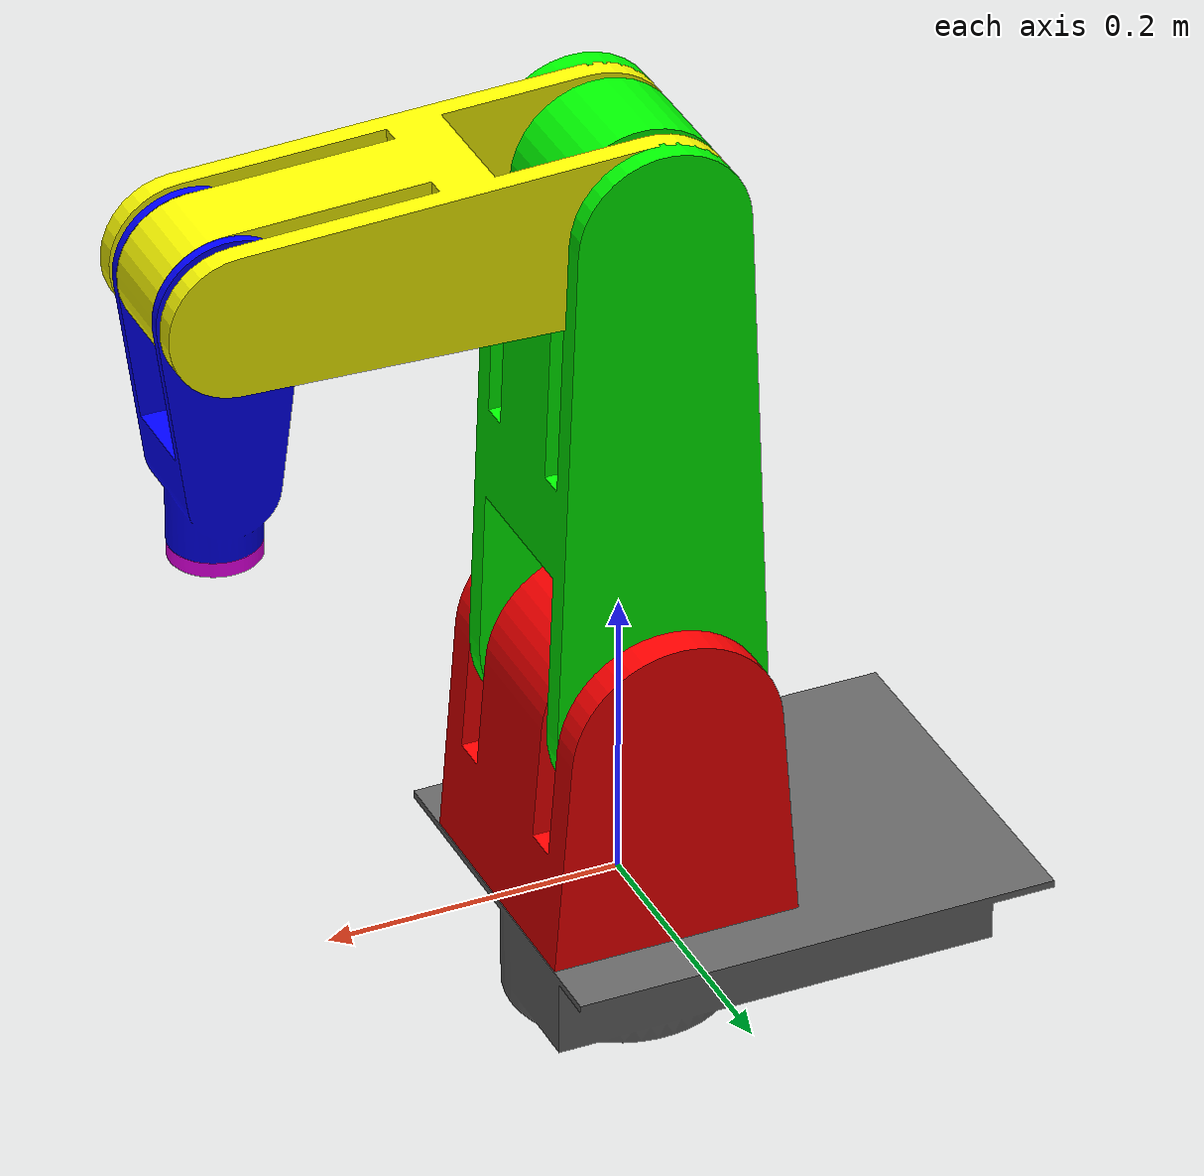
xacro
<?xml version="1.0" ?>

<robot xmlns:xacro="http://ros.org/wiki/xacro" name="igus_robolink_5dof" >

<!--Define constant-->
<xacro:property name="PI" value="3.14159"/>
<xacro:property name="d2r" value="0.0174533"/> <!--degree 2 radius-->
<material name="gray">
  <color rgba="0.4 0.4 0.4 1"/>
</material>
<material name="red">
  <color rgba="1 0 0 1"/>
</material>
<material name="green">
  <color rgba="0 1 0 1"/>
</material>
<material name="blue">
  <color rgba="0 0 1 1"/> <!-- Long stick is represented by a long-thin box -->
</material>
<material name="yellow">
  <color rgba="1 1 0 1"/>
</material>
<material name="purple">
  <color rgba="1 0 1 1"/>
</material>

<!-- ======== base ======== -->
  <link name="base_link">
    <visual>
      <origin xyz="0 0 0" rpy="0 0 0"/>
      <geometry>
        <mesh filename="package://tpm_description/meshes/igus_robolink_5dof/0_base.stl" scale="0.001 0.001 0.001"/>
      </geometry>
      <material name="gray"/>
    </visual>
  </link>

  <joint name="joint1" type="revolute">
    <axis xyz="0 0 1" />
    <origin xyz="0 0 0" rpy="0 0 0"/>
    <parent link="base_link"/>
    <child link="link1"/>
    <limit effort="30" velocity="1" lower="-3.14" upper="3.14"/>
  </joint>

  <link name="link1">
    <visual>
      <origin xyz="0 0 0" rpy="0 0 0"/>
      <geometry>
        <mesh filename="package://tpm_description/meshes/igus_robolink_5dof/1_link1.stl" scale="0.001 0.001 0.001"/>
      </geometry>
      <material name="red"/>
    </visual>
  </link>

  <joint name="joint2" type="revolute">
    <axis xyz="0 1 0"/>
    <origin xyz="0 0 0.152" rpy="0 0 0"/>
    <parent link="link1"/>
    <child link="link2"/>
		<limit effort="100.0" lower="-3.14" upper="3.14" velocity="0.5"/>
  </joint>

  <link name="link2">
    <visual>
      <origin xyz="0 0 0" rpy="0 0 0"/>
      <geometry>
        <mesh filename="package://tpm_description/meshes/igus_robolink_5dof/2_link2.stl" scale="0.001 0.001 0.001"/>
      </geometry>
      <material name="green"/>
    </visual>
  </link>

  <joint name="joint3" type="revolute">
    <axis xyz="0 1 0"/>
    <origin xyz="0 0 0.350" rpy="0 0 0"/>
    <parent link="link2"/>
    <child link="link3"/>
		<limit effort="100.0" lower="-3.14" upper="3.14" velocity="0.5"/>
  </joint>

  <link name="link3">
    <visual>
      <origin xyz="0 0 0" rpy="0 0 0"/>
      <geometry>
        <mesh filename="package://tpm_description/meshes/igus_robolink_5dof/3_link3.stl" scale="0.001 0.001 0.001"/>
      </geometry>
      <material name="yellow"/>
    </visual>
  </link>

  <joint name="joint4" type="revolute">
    <axis xyz="0 1 0"/>
    <origin xyz="0.270 0 0" rpy="0 0 0"/>
    <parent link="link3"/>
    <child link="link4"/>
		<limit effort="100.0" lower="-3.14" upper="3.14" velocity="0.5"/>
  </joint>

  <link name="link4">
    <visual>
      <origin xyz="0 0 0" rpy="0 0 0"/>
      <geometry>
        <mesh filename="package://tpm_description/meshes/igus_robolink_5dof/4_link4.stl" scale="0.001 0.001 0.001"/>
      </geometry>
      <material name="blue"/>
    </visual>
  </link>

  <joint name="joint5" type="revolute">
    <axis xyz="0 0 1"/>
    <origin xyz="0 0 -0.190" rpy="0 0 0"/>
    <parent link="link4"/>
    <child link="link5"/>
		<limit effort="100.0" lower="-3.14" upper="3.14" velocity="0.5"/>
  </joint>

  <link name="link5">
    <visual>
      <origin xyz="0 0 0" rpy="0 0 0"/>
      <geometry>
        <mesh filename="package://tpm_description/meshes/igus_robolink_5dof/5_link5.stl" scale="0.001 0.001 0.001"/>
      </geometry>
      <material name="purple"/>
    </visual>
  </link>
</robot>
